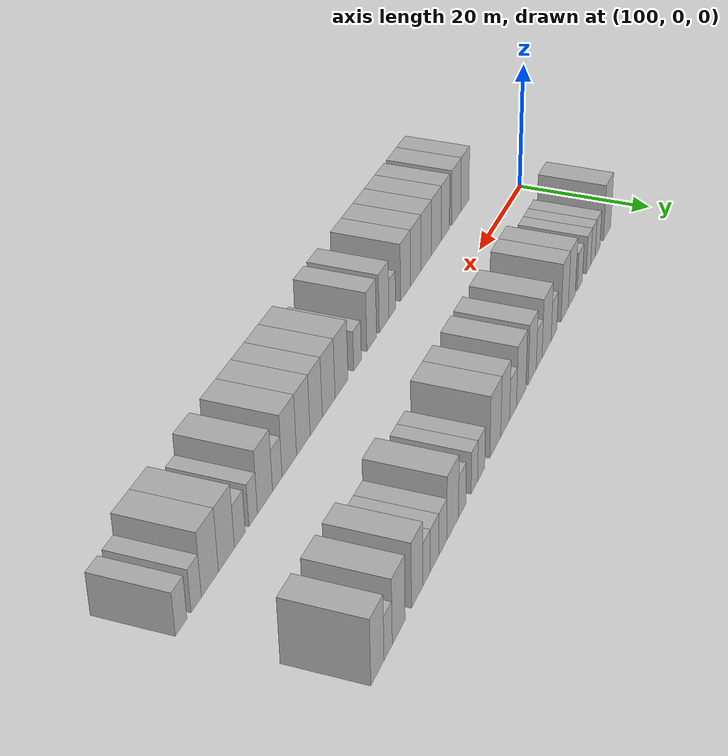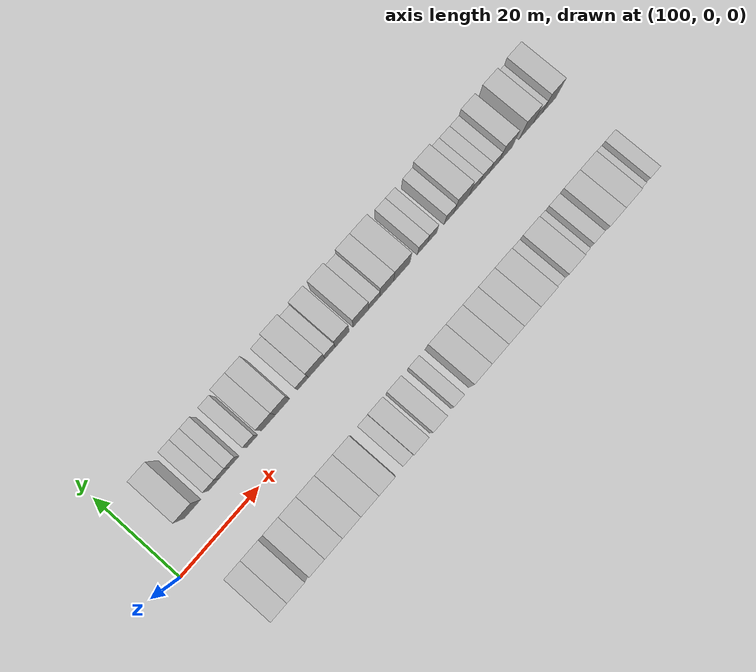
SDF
<sdf version="1.6">
 <world name="default">
  <model name="building_25">
   <static>1</static>
   <pose>109.7811 11.0000 0 0.000000 0.000000 1.570796</pose>
   <link name="link">
    <pose>0 0 4.50 0 0 0</pose>
    <collision name="collision"><geometry><box><size>10.0000 4.1719 9.0000</size></box></geometry></collision>
    <visual name="visual">
     <cast_shadows>0</cast_shadows>
     <geometry><box><size>10.0000 4.1719 9.0000</size></box></geometry>
     <material>
      <script>
       <uri>model://HANNAS_wall/materials/scripts</uri>
       <uri>model://HANNAS_wall/materials/textures</uri>
       <name>vrc/HANNAS_wall</name>
      </script>
     </material>
    </visual>
   </link>
  </model>
  <model name="building_26">
   <static>1</static>
   <pose>115.2230 11.0000 0 0.000000 0.000000 1.570796</pose>
   <link name="link">
    <pose>0 0 3.00 0 0 0</pose>
    <collision name="collision"><geometry><box><size>10.0000 2.7119 6.0000</size></box></geometry></collision>
    <visual name="visual">
     <cast_shadows>0</cast_shadows>
     <geometry><box><size>10.0000 2.7119 6.0000</size></box></geometry>
     <material>
      <script>
       <uri>model://HANNAS_wall/materials/scripts</uri>
       <uri>model://HANNAS_wall/materials/textures</uri>
       <name>vrc/HANNAS_wall</name>
      </script>
     </material>
    </visual>
   </link>
  </model>
  <model name="building_27">
   <static>1</static>
   <pose>117.8030 11.0000 0 0.000000 0.000000 1.570796</pose>
   <link name="link">
    <pose>0 0 3.00 0 0 0</pose>
    <collision name="collision"><geometry><box><size>10.0000 2.4482 6.0000</size></box></geometry></collision>
    <visual name="visual">
     <cast_shadows>0</cast_shadows>
     <geometry><box><size>10.0000 2.4482 6.0000</size></box></geometry>
     <material>
      <script>
       <uri>model://HANNAS_wall/materials/scripts</uri>
       <uri>model://HANNAS_wall/materials/textures</uri>
       <name>vrc/HANNAS_wall</name>
      </script>
     </material>
    </visual>
   </link>
  </model>
  <model name="building_28">
   <static>1</static>
   <pose>120.2904 11.0000 0 0.000000 0.000000 1.570796</pose>
   <link name="link">
    <pose>0 0 3.00 0 0 0</pose>
    <collision name="collision"><geometry><box><size>10.0000 2.5265 6.0000</size></box></geometry></collision>
    <visual name="visual">
     <cast_shadows>0</cast_shadows>
     <geometry><box><size>10.0000 2.5265 6.0000</size></box></geometry>
     <material>
      <script>
       <uri>model://HANNAS_wall/materials/scripts</uri>
       <uri>model://HANNAS_wall/materials/textures</uri>
       <name>vrc/HANNAS_wall</name>
      </script>
     </material>
    </visual>
   </link>
  </model>
  <model name="building_29">
   <static>1</static>
   <pose>124.9317 11.0000 0 0.000000 0.000000 1.570796</pose>
   <link name="link">
    <pose>0 0 3.00 0 0 0</pose>
    <collision name="collision"><geometry><box><size>10.0000 2.7562 6.0000</size></box></geometry></collision>
    <visual name="visual">
     <cast_shadows>0</cast_shadows>
     <geometry><box><size>10.0000 2.7562 6.0000</size></box></geometry>
     <material>
      <script>
       <uri>model://HANNAS_wall/materials/scripts</uri>
       <uri>model://HANNAS_wall/materials/textures</uri>
       <name>vrc/HANNAS_wall</name>
      </script>
     </material>
    </visual>
   </link>
  </model>
  <model name="building_30">
   <static>1</static>
   <pose>129.1264 11.0000 0 0.000000 0.000000 1.570796</pose>
   <link name="link">
    <pose>0 0 4.50 0 0 0</pose>
    <collision name="collision"><geometry><box><size>10.0000 3.6332 9.0000</size></box></geometry></collision>
    <visual name="visual">
     <cast_shadows>0</cast_shadows>
     <geometry><box><size>10.0000 3.6332 9.0000</size></box></geometry>
     <material>
      <script>
       <uri>model://HANNAS_wall/materials/scripts</uri>
       <uri>model://HANNAS_wall/materials/textures</uri>
       <name>vrc/HANNAS_wall</name>
      </script>
     </material>
    </visual>
   </link>
  </model>
  <model name="building_31">
   <static>1</static>
   <pose>132.7680 11.0000 0 0.000000 0.000000 1.570796</pose>
   <link name="link">
    <pose>0 0 4.50 0 0 0</pose>
    <collision name="collision"><geometry><box><size>10.0000 3.6501 9.0000</size></box></geometry></collision>
    <visual name="visual">
     <cast_shadows>0</cast_shadows>
     <geometry><box><size>10.0000 3.6501 9.0000</size></box></geometry>
     <material>
      <script>
       <uri>model://HANNAS_wall/materials/scripts</uri>
       <uri>model://HANNAS_wall/materials/textures</uri>
       <name>vrc/HANNAS_wall</name>
      </script>
     </material>
    </visual>
   </link>
  </model>
  <model name="building_32">
   <static>1</static>
   <pose>138.0019 11.0000 0 0.000000 0.000000 1.570796</pose>
   <link name="link">
    <pose>0 0 3.00 0 0 0</pose>
    <collision name="collision"><geometry><box><size>10.0000 2.8177 6.0000</size></box></geometry></collision>
    <visual name="visual">
     <cast_shadows>0</cast_shadows>
     <geometry><box><size>10.0000 2.8177 6.0000</size></box></geometry>
     <material>
      <script>
       <uri>model://HANNAS_wall/materials/scripts</uri>
       <uri>model://HANNAS_wall/materials/textures</uri>
       <name>vrc/HANNAS_wall</name>
      </script>
     </material>
    </visual>
   </link>
  </model>
  <model name="building_33">
   <static>1</static>
   <pose>141.5890 11.0000 0 0.000000 0.000000 1.570796</pose>
   <link name="link">
    <pose>0 0 4.50 0 0 0</pose>
    <collision name="collision"><geometry><box><size>10.0000 4.3565 9.0000</size></box></geometry></collision>
    <visual name="visual">
     <cast_shadows>0</cast_shadows>
     <geometry><box><size>10.0000 4.3565 9.0000</size></box></geometry>
     <material>
      <script>
       <uri>model://HANNAS_wall/materials/scripts</uri>
       <uri>model://HANNAS_wall/materials/textures</uri>
       <name>vrc/HANNAS_wall</name>
      </script>
     </material>
    </visual>
   </link>
  </model>
  <model name="building_34">
   <static>1</static>
   <pose>145.1042 11.0000 0 0.000000 0.000000 1.570796</pose>
   <link name="link">
    <pose>0 0 3.00 0 0 0</pose>
    <collision name="collision"><geometry><box><size>10.0000 2.6738 6.0000</size></box></geometry></collision>
    <visual name="visual">
     <cast_shadows>0</cast_shadows>
     <geometry><box><size>10.0000 2.6738 6.0000</size></box></geometry>
     <material>
      <script>
       <uri>model://HANNAS_wall/materials/scripts</uri>
       <uri>model://HANNAS_wall/materials/textures</uri>
       <name>vrc/HANNAS_wall</name>
      </script>
     </material>
    </visual>
   </link>
  </model>
  <model name="building_35">
   <static>1</static>
   <pose>148.2805 11.0000 0 0.000000 0.000000 1.570796</pose>
   <link name="link">
    <pose>0 0 4.50 0 0 0</pose>
    <collision name="collision"><geometry><box><size>10.0000 3.6788 9.0000</size></box></geometry></collision>
    <visual name="visual">
     <cast_shadows>0</cast_shadows>
     <geometry><box><size>10.0000 3.6788 9.0000</size></box></geometry>
     <material>
      <script>
       <uri>model://HANNAS_wall/materials/scripts</uri>
       <uri>model://HANNAS_wall/materials/textures</uri>
       <name>vrc/HANNAS_wall</name>
      </script>
     </material>
    </visual>
   </link>
  </model>
  <model name="building_36">
   <static>1</static>
   <pose>153.1604 11.0000 0 0.000000 0.000000 1.570796</pose>
   <link name="link">
    <pose>0 0 4.50 0 0 0</pose>
    <collision name="collision"><geometry><box><size>10.0000 4.0812 9.0000</size></box></geometry></collision>
    <visual name="visual">
     <cast_shadows>0</cast_shadows>
     <geometry><box><size>10.0000 4.0812 9.0000</size></box></geometry>
     <material>
      <script>
       <uri>model://HANNAS_wall/materials/scripts</uri>
       <uri>model://HANNAS_wall/materials/textures</uri>
       <name>vrc/HANNAS_wall</name>
      </script>
     </material>
    </visual>
   </link>
  </model>
  <model name="building_37">
   <static>1</static>
   <pose>156.6918 11.0000 0 0.000000 0.000000 1.570796</pose>
   <link name="link">
    <pose>0 0 3.00 0 0 0</pose>
    <collision name="collision"><geometry><box><size>10.0000 2.9816 6.0000</size></box></geometry></collision>
    <visual name="visual">
     <cast_shadows>0</cast_shadows>
     <geometry><box><size>10.0000 2.9816 6.0000</size></box></geometry>
     <material>
      <script>
       <uri>model://HANNAS_wall/materials/scripts</uri>
       <uri>model://HANNAS_wall/materials/textures</uri>
       <name>vrc/HANNAS_wall</name>
      </script>
     </material>
    </visual>
   </link>
  </model>
  <model name="building_38">
   <static>1</static>
   <pose>160.0155 11.0000 0 0.000000 0.000000 1.570796</pose>
   <link name="link">
    <pose>0 0 4.50 0 0 0</pose>
    <collision name="collision"><geometry><box><size>10.0000 3.6657 9.0000</size></box></geometry></collision>
    <visual name="visual">
     <cast_shadows>0</cast_shadows>
     <geometry><box><size>10.0000 3.6657 9.0000</size></box></geometry>
     <material>
      <script>
       <uri>model://HANNAS_wall/materials/scripts</uri>
       <uri>model://HANNAS_wall/materials/textures</uri>
       <name>vrc/HANNAS_wall</name>
      </script>
     </material>
    </visual>
   </link>
  </model>
  <model name="building_39">
   <static>1</static>
   <pose>164.0499 11.0000 0 0.000000 0.000000 1.570796</pose>
   <link name="link">
    <pose>0 0 4.50 0 0 0</pose>
    <collision name="collision"><geometry><box><size>10.0000 4.4031 9.0000</size></box></geometry></collision>
    <visual name="visual">
     <cast_shadows>0</cast_shadows>
     <geometry><box><size>10.0000 4.4031 9.0000</size></box></geometry>
     <material>
      <script>
       <uri>model://HANNAS_wall/materials/scripts</uri>
       <uri>model://HANNAS_wall/materials/textures</uri>
       <name>vrc/HANNAS_wall</name>
      </script>
     </material>
    </visual>
   </link>
  </model>
  <model name="building_40">
   <static>1</static>
   <pose>169.6467 11.0000 0 0.000000 0.000000 1.570796</pose>
   <link name="link">
    <pose>0 0 3.00 0 0 0</pose>
    <collision name="collision"><geometry><box><size>10.0000 2.7906 6.0000</size></box></geometry></collision>
    <visual name="visual">
     <cast_shadows>0</cast_shadows>
     <geometry><box><size>10.0000 2.7906 6.0000</size></box></geometry>
     <material>
      <script>
       <uri>model://HANNAS_wall/materials/scripts</uri>
       <uri>model://HANNAS_wall/materials/textures</uri>
       <name>vrc/HANNAS_wall</name>
      </script>
     </material>
    </visual>
   </link>
  </model>
  <model name="building_41">
   <static>1</static>
   <pose>172.2790 11.0000 0 0.000000 0.000000 1.570796</pose>
   <link name="link">
    <pose>0 0 3.00 0 0 0</pose>
    <collision name="collision"><geometry><box><size>10.0000 2.4739 6.0000</size></box></geometry></collision>
    <visual name="visual">
     <cast_shadows>0</cast_shadows>
     <geometry><box><size>10.0000 2.4739 6.0000</size></box></geometry>
     <material>
      <script>
       <uri>model://HANNAS_wall/materials/scripts</uri>
       <uri>model://HANNAS_wall/materials/textures</uri>
       <name>vrc/HANNAS_wall</name>
      </script>
     </material>
    </visual>
   </link>
  </model>
  <model name="building_42">
   <static>1</static>
   <pose>176.8447 11.0000 0 0.000000 0.000000 1.570796</pose>
   <link name="link">
    <pose>0 0 3.00 0 0 0</pose>
    <collision name="collision"><geometry><box><size>10.0000 2.6575 6.0000</size></box></geometry></collision>
    <visual name="visual">
     <cast_shadows>0</cast_shadows>
     <geometry><box><size>10.0000 2.6575 6.0000</size></box></geometry>
     <material>
      <script>
       <uri>model://HANNAS_wall/materials/scripts</uri>
       <uri>model://HANNAS_wall/materials/textures</uri>
       <name>vrc/HANNAS_wall</name>
      </script>
     </material>
    </visual>
   </link>
  </model>
  <model name="building_43">
   <static>1</static>
   <pose>180.2695 11.0000 0 0.000000 0.000000 1.570796</pose>
   <link name="link">
    <pose>0 0 4.50 0 0 0</pose>
    <collision name="collision"><geometry><box><size>10.0000 4.1922 9.0000</size></box></geometry></collision>
    <visual name="visual">
     <cast_shadows>0</cast_shadows>
     <geometry><box><size>10.0000 4.1922 9.0000</size></box></geometry>
     <material>
      <script>
       <uri>model://HANNAS_wall/materials/scripts</uri>
       <uri>model://HANNAS_wall/materials/textures</uri>
       <name>vrc/HANNAS_wall</name>
      </script>
     </material>
    </visual>
   </link>
  </model>
  <model name="building_44">
   <static>1</static>
   <pose>183.7825 11.0000 0 0.000000 0.000000 1.570796</pose>
   <link name="link">
    <pose>0 0 3.00 0 0 0</pose>
    <collision name="collision"><geometry><box><size>10.0000 2.8337 6.0000</size></box></geometry></collision>
    <visual name="visual">
     <cast_shadows>0</cast_shadows>
     <geometry><box><size>10.0000 2.8337 6.0000</size></box></geometry>
     <material>
      <script>
       <uri>model://HANNAS_wall/materials/scripts</uri>
       <uri>model://HANNAS_wall/materials/textures</uri>
       <name>vrc/HANNAS_wall</name>
      </script>
     </material>
    </visual>
   </link>
  </model>
  <model name="building_45">
   <static>1</static>
   <pose>186.6069 11.0000 0 0.000000 0.000000 1.570796</pose>
   <link name="link">
    <pose>0 0 3.00 0 0 0</pose>
    <collision name="collision"><geometry><box><size>10.0000 2.8151 6.0000</size></box></geometry></collision>
    <visual name="visual">
     <cast_shadows>0</cast_shadows>
     <geometry><box><size>10.0000 2.8151 6.0000</size></box></geometry>
     <material>
      <script>
       <uri>model://HANNAS_wall/materials/scripts</uri>
       <uri>model://HANNAS_wall/materials/textures</uri>
       <name>vrc/HANNAS_wall</name>
      </script>
     </material>
    </visual>
   </link>
  </model>
  <model name="building_46">
   <static>1</static>
   <pose>189.2598 11.0000 0 0.000000 0.000000 1.570796</pose>
   <link name="link">
    <pose>0 0 3.00 0 0 0</pose>
    <collision name="collision"><geometry><box><size>10.0000 2.4908 6.0000</size></box></geometry></collision>
    <visual name="visual">
     <cast_shadows>0</cast_shadows>
     <geometry><box><size>10.0000 2.4908 6.0000</size></box></geometry>
     <material>
      <script>
       <uri>model://HANNAS_wall/materials/scripts</uri>
       <uri>model://HANNAS_wall/materials/textures</uri>
       <name>vrc/HANNAS_wall</name>
      </script>
     </material>
    </visual>
   </link>
  </model>
  <model name="building_47">
   <static>1</static>
   <pose>192.3741 11.0000 0 0.000000 0.000000 1.570796</pose>
   <link name="link">
    <pose>0 0 4.50 0 0 0</pose>
    <collision name="collision"><geometry><box><size>10.0000 3.7377 9.0000</size></box></geometry></collision>
    <visual name="visual">
     <cast_shadows>0</cast_shadows>
     <geometry><box><size>10.0000 3.7377 9.0000</size></box></geometry>
     <material>
      <script>
       <uri>model://HANNAS_wall/materials/scripts</uri>
       <uri>model://HANNAS_wall/materials/textures</uri>
       <name>vrc/HANNAS_wall</name>
      </script>
     </material>
    </visual>
   </link>
  </model>
  <model name="building_48">
   <static>1</static>
   <pose>198.2421 11.0000 0 0.000000 0.000000 1.570796</pose>
   <link name="link">
    <pose>0 0 4.50 0 0 0</pose>
    <collision name="collision"><geometry><box><size>10.0000 3.9981 9.0000</size></box></geometry></collision>
    <visual name="visual">
     <cast_shadows>0</cast_shadows>
     <geometry><box><size>10.0000 3.9981 9.0000</size></box></geometry>
     <material>
      <script>
       <uri>model://HANNAS_wall/materials/scripts</uri>
       <uri>model://HANNAS_wall/materials/textures</uri>
       <name>vrc/HANNAS_wall</name>
      </script>
     </material>
    </visual>
   </link>
  </model>
  <model name="building_49">
   <static>1</static>
   <pose>201.4739 11.0000 0 0.000000 0.000000 1.570796</pose>
   <link name="link">
    <pose>0 0 3.00 0 0 0</pose>
    <collision name="collision"><geometry><box><size>10.0000 2.4655 6.0000</size></box></geometry></collision>
    <visual name="visual">
     <cast_shadows>0</cast_shadows>
     <geometry><box><size>10.0000 2.4655 6.0000</size></box></geometry>
     <material>
      <script>
       <uri>model://HANNAS_wall/materials/scripts</uri>
       <uri>model://HANNAS_wall/materials/textures</uri>
       <name>vrc/HANNAS_wall</name>
      </script>
     </material>
    </visual>
   </link>
  </model>
  <model name="building_50">
   <static>1</static>
   <pose>204.6502 11.0000 0 0.000000 0.000000 1.570796</pose>
   <link name="link">
    <pose>0 0 4.50 0 0 0</pose>
    <collision name="collision"><geometry><box><size>10.0000 3.8872 9.0000</size></box></geometry></collision>
    <visual name="visual">
     <cast_shadows>0</cast_shadows>
     <geometry><box><size>10.0000 3.8872 9.0000</size></box></geometry>
     <material>
      <script>
       <uri>model://HANNAS_wall/materials/scripts</uri>
       <uri>model://HANNAS_wall/materials/textures</uri>
       <name>vrc/HANNAS_wall</name>
      </script>
     </material>
    </visual>
   </link>
  </model>
  <model name="building_77">
   <static>1</static>
   <pose>108.5464 -11.0000 0 0.000000 0.000000 1.570796</pose>
   <link name="link">
    <pose>0 0 4.50 0 0 0</pose>
    <collision name="collision"><geometry><box><size>10.0000 3.8624 9.0000</size></box></geometry></collision>
    <visual name="visual">
     <cast_shadows>0</cast_shadows>
     <geometry><box><size>10.0000 3.8624 9.0000</size></box></geometry>
     <material>
      <script>
       <uri>model://HANNAS_wall/materials/scripts</uri>
       <uri>model://HANNAS_wall/materials/textures</uri>
       <name>vrc/HANNAS_wall</name>
      </script>
     </material>
    </visual>
   </link>
  </model>
  <model name="building_78">
   <static>1</static>
   <pose>112.6102 -11.0000 0 0.000000 0.000000 1.570796</pose>
   <link name="link">
    <pose>0 0 4.50 0 0 0</pose>
    <collision name="collision"><geometry><box><size>10.0000 4.2652 9.0000</size></box></geometry></collision>
    <visual name="visual">
     <cast_shadows>0</cast_shadows>
     <geometry><box><size>10.0000 4.2652 9.0000</size></box></geometry>
     <material>
      <script>
       <uri>model://HANNAS_wall/materials/scripts</uri>
       <uri>model://HANNAS_wall/materials/textures</uri>
       <name>vrc/HANNAS_wall</name>
      </script>
     </material>
    </visual>
   </link>
  </model>
  <model name="building_79">
   <static>1</static>
   <pose>117.6199 -11.0000 0 0.000000 0.000000 1.570796</pose>
   <link name="link">
    <pose>0 0 4.50 0 0 0</pose>
    <collision name="collision"><geometry><box><size>10.0000 3.7543 9.0000</size></box></geometry></collision>
    <visual name="visual">
     <cast_shadows>0</cast_shadows>
     <geometry><box><size>10.0000 3.7543 9.0000</size></box></geometry>
     <material>
      <script>
       <uri>model://HANNAS_wall/materials/scripts</uri>
       <uri>model://HANNAS_wall/materials/textures</uri>
       <name>vrc/HANNAS_wall</name>
      </script>
     </material>
    </visual>
   </link>
  </model>
  <model name="building_80">
   <static>1</static>
   <pose>121.6288 -11.0000 0 0.000000 0.000000 1.570796</pose>
   <link name="link">
    <pose>0 0 4.50 0 0 0</pose>
    <collision name="collision"><geometry><box><size>10.0000 4.2635 9.0000</size></box></geometry></collision>
    <visual name="visual">
     <cast_shadows>0</cast_shadows>
     <geometry><box><size>10.0000 4.2635 9.0000</size></box></geometry>
     <material>
      <script>
       <uri>model://HANNAS_wall/materials/scripts</uri>
       <uri>model://HANNAS_wall/materials/textures</uri>
       <name>vrc/HANNAS_wall</name>
      </script>
     </material>
    </visual>
   </link>
  </model>
  <model name="building_81">
   <static>1</static>
   <pose>126.0041 -11.0000 0 0.000000 0.000000 1.570796</pose>
   <link name="link">
    <pose>0 0 4.50 0 0 0</pose>
    <collision name="collision"><geometry><box><size>10.0000 4.4872 9.0000</size></box></geometry></collision>
    <visual name="visual">
     <cast_shadows>0</cast_shadows>
     <geometry><box><size>10.0000 4.4872 9.0000</size></box></geometry>
     <material>
      <script>
       <uri>model://HANNAS_wall/materials/scripts</uri>
       <uri>model://HANNAS_wall/materials/textures</uri>
       <name>vrc/HANNAS_wall</name>
      </script>
     </material>
    </visual>
   </link>
  </model>
  <model name="building_82">
   <static>1</static>
   <pose>130.4441 -11.0000 0 0.000000 0.000000 1.570796</pose>
   <link name="link">
    <pose>0 0 4.50 0 0 0</pose>
    <collision name="collision"><geometry><box><size>10.0000 4.3928 9.0000</size></box></geometry></collision>
    <visual name="visual">
     <cast_shadows>0</cast_shadows>
     <geometry><box><size>10.0000 4.3928 9.0000</size></box></geometry>
     <material>
      <script>
       <uri>model://HANNAS_wall/materials/scripts</uri>
       <uri>model://HANNAS_wall/materials/textures</uri>
       <name>vrc/HANNAS_wall</name>
      </script>
     </material>
    </visual>
   </link>
  </model>
  <model name="building_83">
   <static>1</static>
   <pose>134.6615 -11.0000 0 0.000000 0.000000 1.570796</pose>
   <link name="link">
    <pose>0 0 4.50 0 0 0</pose>
    <collision name="collision"><geometry><box><size>10.0000 4.0420 9.0000</size></box></geometry></collision>
    <visual name="visual">
     <cast_shadows>0</cast_shadows>
     <geometry><box><size>10.0000 4.0420 9.0000</size></box></geometry>
     <material>
      <script>
       <uri>model://HANNAS_wall/materials/scripts</uri>
       <uri>model://HANNAS_wall/materials/textures</uri>
       <name>vrc/HANNAS_wall</name>
      </script>
     </material>
    </visual>
   </link>
  </model>
  <model name="building_84">
   <static>1</static>
   <pose>139.9658 -11.0000 0 0.000000 0.000000 1.570796</pose>
   <link name="link">
    <pose>0 0 3.00 0 0 0</pose>
    <collision name="collision"><geometry><box><size>10.0000 2.5666 6.0000</size></box></geometry></collision>
    <visual name="visual">
     <cast_shadows>0</cast_shadows>
     <geometry><box><size>10.0000 2.5666 6.0000</size></box></geometry>
     <material>
      <script>
       <uri>model://HANNAS_wall/materials/scripts</uri>
       <uri>model://HANNAS_wall/materials/textures</uri>
       <name>vrc/HANNAS_wall</name>
      </script>
     </material>
    </visual>
   </link>
  </model>
  <model name="building_85">
   <static>1</static>
   <pose>143.1295 -11.0000 0 0.000000 0.000000 1.570796</pose>
   <link name="link">
    <pose>0 0 4.50 0 0 0</pose>
    <collision name="collision"><geometry><box><size>10.0000 3.7607 9.0000</size></box></geometry></collision>
    <visual name="visual">
     <cast_shadows>0</cast_shadows>
     <geometry><box><size>10.0000 3.7607 9.0000</size></box></geometry>
     <material>
      <script>
       <uri>model://HANNAS_wall/materials/scripts</uri>
       <uri>model://HANNAS_wall/materials/textures</uri>
       <name>vrc/HANNAS_wall</name>
      </script>
     </material>
    </visual>
   </link>
  </model>
  <model name="building_86">
   <static>1</static>
   <pose>147.8119 -11.0000 0 0.000000 0.000000 1.570796</pose>
   <link name="link">
    <pose>0 0 4.50 0 0 0</pose>
    <collision name="collision"><geometry><box><size>10.0000 3.6041 9.0000</size></box></geometry></collision>
    <visual name="visual">
     <cast_shadows>0</cast_shadows>
     <geometry><box><size>10.0000 3.6041 9.0000</size></box></geometry>
     <material>
      <script>
       <uri>model://HANNAS_wall/materials/scripts</uri>
       <uri>model://HANNAS_wall/materials/textures</uri>
       <name>vrc/HANNAS_wall</name>
      </script>
     </material>
    </visual>
   </link>
  </model>
  <model name="building_87">
   <static>1</static>
   <pose>152.9930 -11.0000 0 0.000000 0.000000 1.570796</pose>
   <link name="link">
    <pose>0 0 3.00 0 0 0</pose>
    <collision name="collision"><geometry><box><size>10.0000 2.7581 6.0000</size></box></geometry></collision>
    <visual name="visual">
     <cast_shadows>0</cast_shadows>
     <geometry><box><size>10.0000 2.7581 6.0000</size></box></geometry>
     <material>
      <script>
       <uri>model://HANNAS_wall/materials/scripts</uri>
       <uri>model://HANNAS_wall/materials/textures</uri>
       <name>vrc/HANNAS_wall</name>
      </script>
     </material>
    </visual>
   </link>
  </model>
  <model name="building_88">
   <static>1</static>
   <pose>158.6018 -11.0000 0 0.000000 0.000000 1.570796</pose>
   <link name="link">
    <pose>0 0 4.50 0 0 0</pose>
    <collision name="collision"><geometry><box><size>10.0000 4.4593 9.0000</size></box></geometry></collision>
    <visual name="visual">
     <cast_shadows>0</cast_shadows>
     <geometry><box><size>10.0000 4.4593 9.0000</size></box></geometry>
     <material>
      <script>
       <uri>model://HANNAS_wall/materials/scripts</uri>
       <uri>model://HANNAS_wall/materials/textures</uri>
       <name>vrc/HANNAS_wall</name>
      </script>
     </material>
    </visual>
   </link>
  </model>
  <model name="building_89">
   <static>1</static>
   <pose>162.9778 -11.0000 0 0.000000 0.000000 1.570796</pose>
   <link name="link">
    <pose>0 0 4.50 0 0 0</pose>
    <collision name="collision"><geometry><box><size>10.0000 4.2927 9.0000</size></box></geometry></collision>
    <visual name="visual">
     <cast_shadows>0</cast_shadows>
     <geometry><box><size>10.0000 4.2927 9.0000</size></box></geometry>
     <material>
      <script>
       <uri>model://HANNAS_wall/materials/scripts</uri>
       <uri>model://HANNAS_wall/materials/textures</uri>
       <name>vrc/HANNAS_wall</name>
      </script>
     </material>
    </visual>
   </link>
  </model>
  <model name="building_90">
   <static>1</static>
   <pose>167.1056 -11.0000 0 0.000000 0.000000 1.570796</pose>
   <link name="link">
    <pose>0 0 4.50 0 0 0</pose>
    <collision name="collision"><geometry><box><size>10.0000 3.9628 9.0000</size></box></geometry></collision>
    <visual name="visual">
     <cast_shadows>0</cast_shadows>
     <geometry><box><size>10.0000 3.9628 9.0000</size></box></geometry>
     <material>
      <script>
       <uri>model://HANNAS_wall/materials/scripts</uri>
       <uri>model://HANNAS_wall/materials/textures</uri>
       <name>vrc/HANNAS_wall</name>
      </script>
     </material>
    </visual>
   </link>
  </model>
  <model name="building_91">
   <static>1</static>
   <pose>171.2261 -11.0000 0 0.000000 0.000000 1.570796</pose>
   <link name="link">
    <pose>0 0 4.50 0 0 0</pose>
    <collision name="collision"><geometry><box><size>10.0000 4.2781 9.0000</size></box></geometry></collision>
    <visual name="visual">
     <cast_shadows>0</cast_shadows>
     <geometry><box><size>10.0000 4.2781 9.0000</size></box></geometry>
     <material>
      <script>
       <uri>model://HANNAS_wall/materials/scripts</uri>
       <uri>model://HANNAS_wall/materials/textures</uri>
       <name>vrc/HANNAS_wall</name>
      </script>
     </material>
    </visual>
   </link>
  </model>
  <model name="building_92">
   <static>1</static>
   <pose>175.5814 -11.0000 0 0.000000 0.000000 1.570796</pose>
   <link name="link">
    <pose>0 0 4.50 0 0 0</pose>
    <collision name="collision"><geometry><box><size>10.0000 4.4326 9.0000</size></box></geometry></collision>
    <visual name="visual">
     <cast_shadows>0</cast_shadows>
     <geometry><box><size>10.0000 4.4326 9.0000</size></box></geometry>
     <material>
      <script>
       <uri>model://HANNAS_wall/materials/scripts</uri>
       <uri>model://HANNAS_wall/materials/textures</uri>
       <name>vrc/HANNAS_wall</name>
      </script>
     </material>
    </visual>
   </link>
  </model>
  <model name="building_93">
   <static>1</static>
   <pose>179.2165 -11.0000 0 0.000000 0.000000 1.570796</pose>
   <link name="link">
    <pose>0 0 3.00 0 0 0</pose>
    <collision name="collision"><geometry><box><size>10.0000 2.8374 6.0000</size></box></geometry></collision>
    <visual name="visual">
     <cast_shadows>0</cast_shadows>
     <geometry><box><size>10.0000 2.8374 6.0000</size></box></geometry>
     <material>
      <script>
       <uri>model://HANNAS_wall/materials/scripts</uri>
       <uri>model://HANNAS_wall/materials/textures</uri>
       <name>vrc/HANNAS_wall</name>
      </script>
     </material>
    </visual>
   </link>
  </model>
  <model name="building_94">
   <static>1</static>
   <pose>182.8181 -11.0000 0 0.000000 0.000000 1.570796</pose>
   <link name="link">
    <pose>0 0 4.50 0 0 0</pose>
    <collision name="collision"><geometry><box><size>10.0000 4.3658 9.0000</size></box></geometry></collision>
    <visual name="visual">
     <cast_shadows>0</cast_shadows>
     <geometry><box><size>10.0000 4.3658 9.0000</size></box></geometry>
     <material>
      <script>
       <uri>model://HANNAS_wall/materials/scripts</uri>
       <uri>model://HANNAS_wall/materials/textures</uri>
       <name>vrc/HANNAS_wall</name>
      </script>
     </material>
    </visual>
   </link>
  </model>
  <model name="building_95">
   <static>1</static>
   <pose>186.2040 -11.0000 0 0.000000 0.000000 1.570796</pose>
   <link name="link">
    <pose>0 0 3.00 0 0 0</pose>
    <collision name="collision"><geometry><box><size>10.0000 2.4061 6.0000</size></box></geometry></collision>
    <visual name="visual">
     <cast_shadows>0</cast_shadows>
     <geometry><box><size>10.0000 2.4061 6.0000</size></box></geometry>
     <material>
      <script>
       <uri>model://HANNAS_wall/materials/scripts</uri>
       <uri>model://HANNAS_wall/materials/textures</uri>
       <name>vrc/HANNAS_wall</name>
      </script>
     </material>
    </visual>
   </link>
  </model>
  <model name="building_96">
   <static>1</static>
   <pose>189.8919 -11.0000 0 0.000000 0.000000 1.570796</pose>
   <link name="link">
    <pose>0 0 3.00 0 0 0</pose>
    <collision name="collision"><geometry><box><size>10.0000 2.9698 6.0000</size></box></geometry></collision>
    <visual name="visual">
     <cast_shadows>0</cast_shadows>
     <geometry><box><size>10.0000 2.9698 6.0000</size></box></geometry>
     <material>
      <script>
       <uri>model://HANNAS_wall/materials/scripts</uri>
       <uri>model://HANNAS_wall/materials/textures</uri>
       <name>vrc/HANNAS_wall</name>
      </script>
     </material>
    </visual>
   </link>
  </model>
  <model name="building_97">
   <static>1</static>
   <pose>193.5155 -11.0000 0 0.000000 0.000000 1.570796</pose>
   <link name="link">
    <pose>0 0 4.50 0 0 0</pose>
    <collision name="collision"><geometry><box><size>10.0000 4.2774 9.0000</size></box></geometry></collision>
    <visual name="visual">
     <cast_shadows>0</cast_shadows>
     <geometry><box><size>10.0000 4.2774 9.0000</size></box></geometry>
     <material>
      <script>
       <uri>model://HANNAS_wall/materials/scripts</uri>
       <uri>model://HANNAS_wall/materials/textures</uri>
       <name>vrc/HANNAS_wall</name>
      </script>
     </material>
    </visual>
   </link>
  </model>
  <model name="building_98">
   <static>1</static>
   <pose>197.8406 -11.0000 0 0.000000 0.000000 1.570796</pose>
   <link name="link">
    <pose>0 0 4.50 0 0 0</pose>
    <collision name="collision"><geometry><box><size>10.0000 4.3728 9.0000</size></box></geometry></collision>
    <visual name="visual">
     <cast_shadows>0</cast_shadows>
     <geometry><box><size>10.0000 4.3728 9.0000</size></box></geometry>
     <material>
      <script>
       <uri>model://HANNAS_wall/materials/scripts</uri>
       <uri>model://HANNAS_wall/materials/textures</uri>
       <name>vrc/HANNAS_wall</name>
      </script>
     </material>
    </visual>
   </link>
  </model>
  <model name="building_99">
   <static>1</static>
   <pose>201.3233 -11.0000 0 0.000000 0.000000 1.570796</pose>
   <link name="link">
    <pose>0 0 3.00 0 0 0</pose>
    <collision name="collision"><geometry><box><size>10.0000 2.5925 6.0000</size></box></geometry></collision>
    <visual name="visual">
     <cast_shadows>0</cast_shadows>
     <geometry><box><size>10.0000 2.5925 6.0000</size></box></geometry>
     <material>
      <script>
       <uri>model://HANNAS_wall/materials/scripts</uri>
       <uri>model://HANNAS_wall/materials/textures</uri>
       <name>vrc/HANNAS_wall</name>
      </script>
     </material>
    </visual>
   </link>
  </model>
  <model name="building_100">
   <static>1</static>
   <pose>205.0366 -11.0000 0 0.000000 0.000000 1.570796</pose>
   <link name="link">
    <pose>0 0 3.00 0 0 0</pose>
    <collision name="collision"><geometry><box><size>10.0000 2.8341 6.0000</size></box></geometry></collision>
    <visual name="visual">
     <cast_shadows>0</cast_shadows>
     <geometry><box><size>10.0000 2.8341 6.0000</size></box></geometry>
     <material>
      <script>
       <uri>model://HANNAS_wall/materials/scripts</uri>
       <uri>model://HANNAS_wall/materials/textures</uri>
       <name>vrc/HANNAS_wall</name>
      </script>
     </material>
    </visual>
   </link>
  </model>
 </world>
</sdf>
